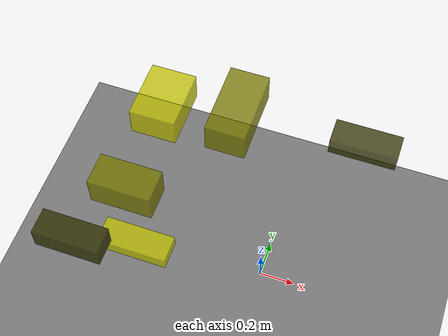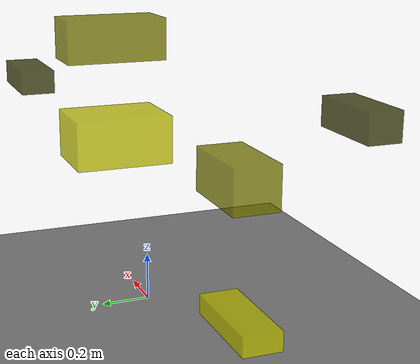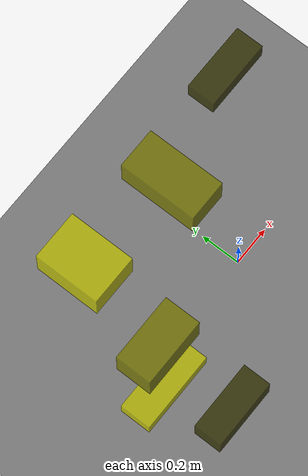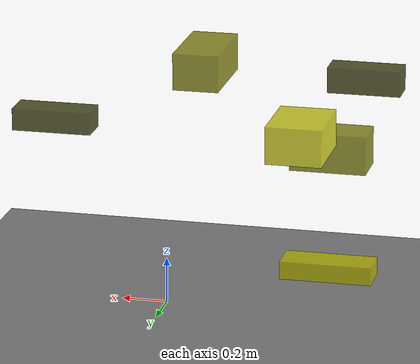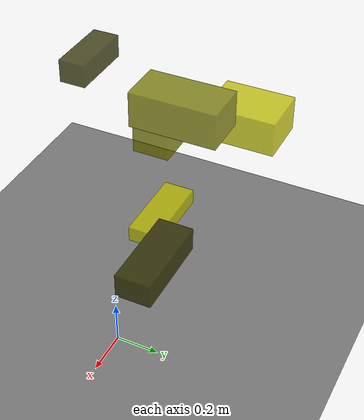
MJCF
<?xml version="1.0"?>
<mujoco model="obstacle_scene">
  <compiler angle="radian" coordinate="local"/>
  <option timestep="0.001" gravity="0 0 -9.81"/>

  <asset>
    <material name="obstacle_mat" rgba="0.8 0.8 0.0 0.8"/>
    <material name="ground_mat" rgba="0.5 0.5 0.5 1"/>
  </asset>

  <worldbody>
    <!-- Ground plane -->
    <geom name="ground" type="plane" size="3 3 0.1" material="ground_mat"/>

    <!-- Obstacles -->
    <body name="obstacle_0" pos="-0.773525 -0.537770 0.916181">
      <geom name="obs_0" type="box" size="0.162899 0.065727 0.057194" rgba="0.2 0.2 0.0 0.8"/>
    </body>
    <body name="obstacle_1" pos="-0.705146 -0.098830 0.724144">
      <geom name="obs_1" type="box" size="0.166060 0.088818 0.084226" rgba="0.5 0.5 0.0 0.8"/>
    </body>
    <body name="obstacle_2" pos="-0.656772 0.327188 0.900370">
      <geom name="obs_2" type="box" size="0.118927 0.159168 0.079891" rgba="0.8 0.8 0.0 0.8"/>
    </body>
    <body name="obstacle_3" pos="0.380832 0.396024 0.933131">
      <geom name="obs_3" type="box" size="0.168680 0.067678 0.047074" rgba="0.2 0.2 0.0 0.8"/>
    </body>
    <body name="obstacle_4" pos="-0.223516 0.210583 1.163952">
      <geom name="obs_4" type="box" size="0.096617 0.185635 0.077749" rgba="0.5 0.5 0.0 0.8"/>
    </body>
    <body name="obstacle_5" pos="-0.693439 -0.122712 0.169928">
      <geom name="obs_5" type="box" size="0.201451 0.078010 0.039724" rgba="0.8 0.8 0.0 0.8"/>
    </body>
  </worldbody>
</mujoco>
